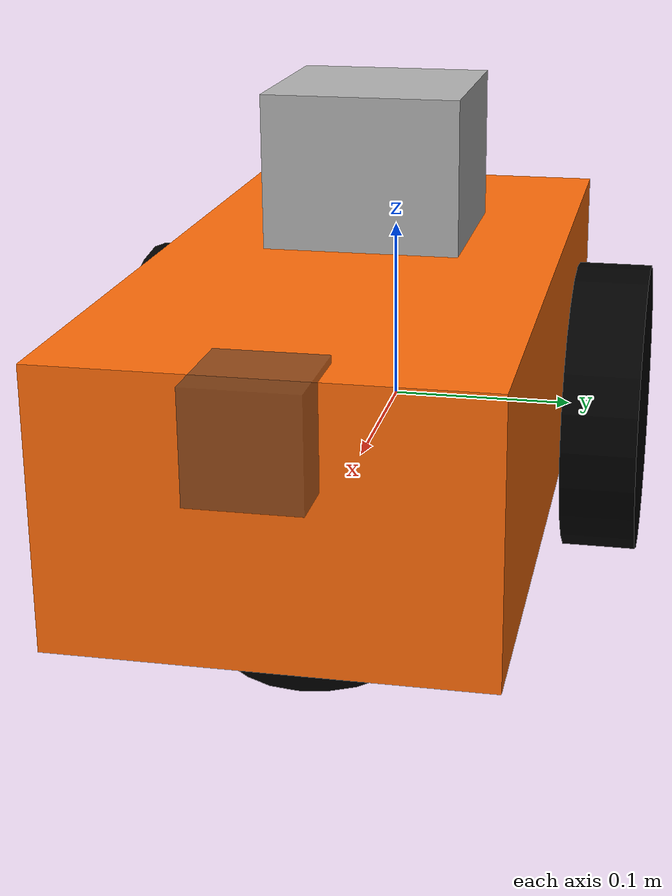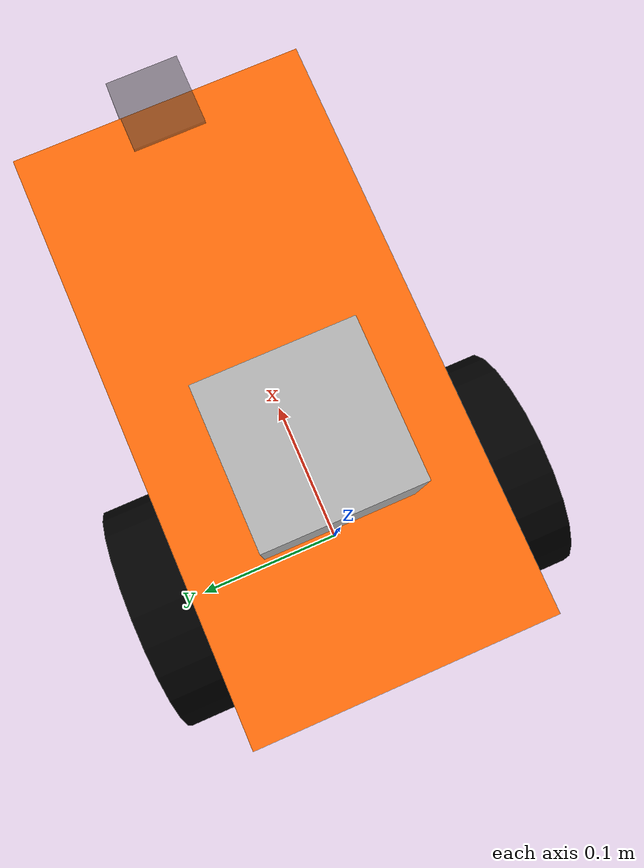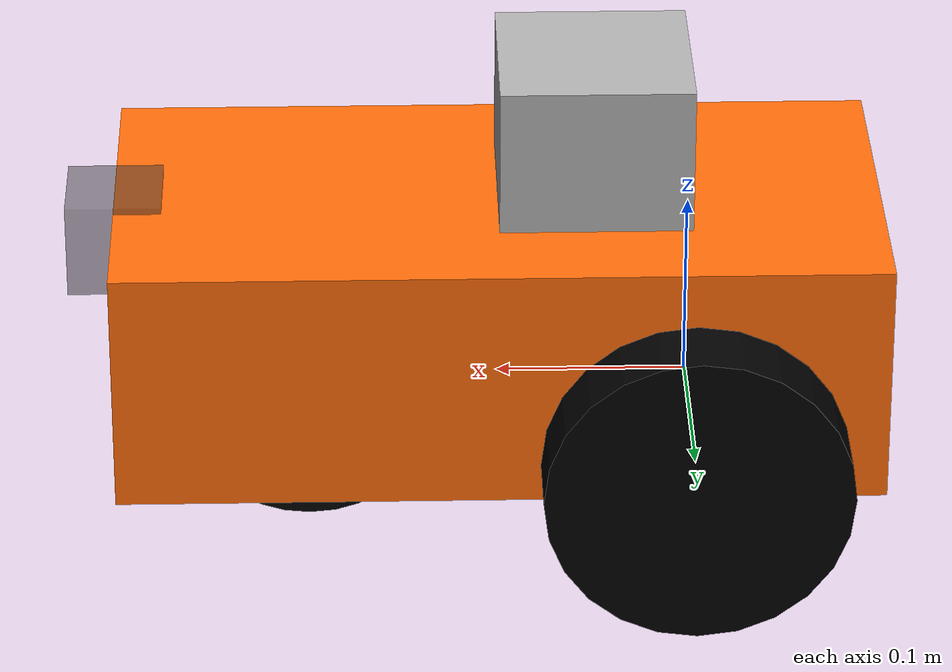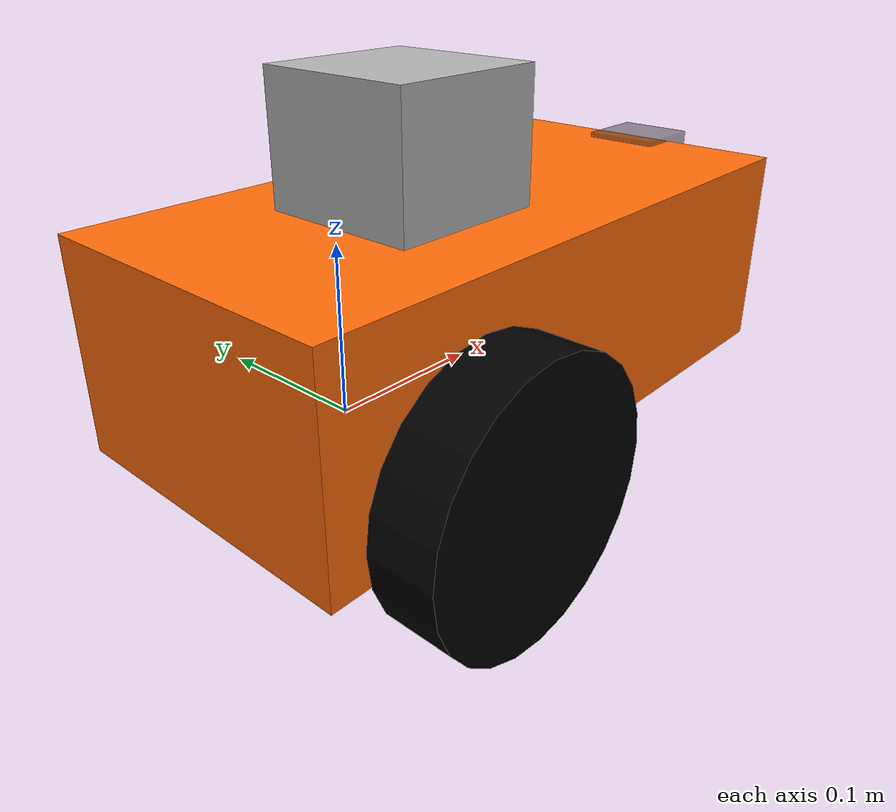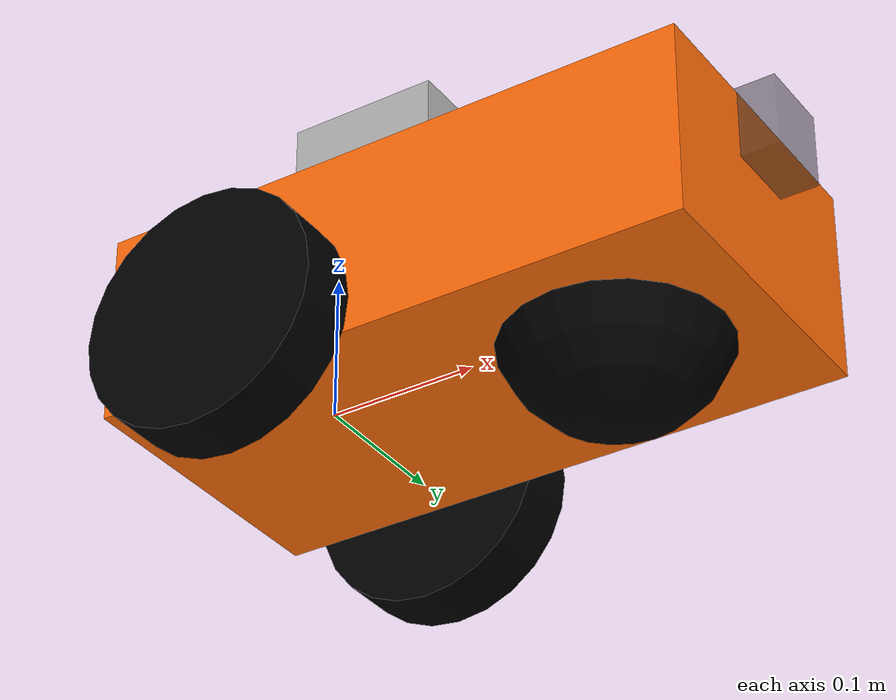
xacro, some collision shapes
<?xml version='1.0'?>

<robot name="simple_chassis_bot" xmlns:xacro="http://www.ros.org/wiki/xacro">

  <!-- import Rviz color definitions -->
  <xacro:include filename="$(find simple_chassis_bot)/urdf/materials.xacro" />
  <!-- import inertial macros for calculating mass etc. of shapes -->
  <xacro:include filename="$(find simple_chassis_bot)/urdf/inertial_macros.xacro" />
  <!--  gazebo plugins -->
  <xacro:include filename="$(find simple_chassis_bot)/urdf/simple_chassis_bot.gazebo" />

  <xacro:property name="wheel_radius" value="0.08" />
  <xacro:property name="chassis_length" value="0.4" />
  <xacro:property name="chassis_width" value="0.2" />
  <xacro:property name="chassis_height" value="0.13" />

  <!-- base link -->
  <!-- for a differential drive robot easiest if this is centre of wheel axle, this is also the centre of rotation for the robot -->
  <link name="base_link"></link>

  <!-- chassis -->
  <!-- origin just behind the centre of the base_link -->
  <joint name="chassis_joint" type="fixed">
    <parent link="base_link" />
    <child link="chassis" />
    <origin xyz="-0.1 0 0" />
  </joint>

  <link name="chassis">
    <visual>
      <origin xyz="${chassis_length/2} 0 ${chassis_height/3}" />
      <geometry>
        <box size="${chassis_length} ${chassis_width} ${chassis_height}" />
      </geometry>
      <material name="orange" />
    </visual>
    <collision>
      <origin xyz="${chassis_length/2} 0 ${chassis_height/3}" />
      <geometry>
        <box size="${chassis_length} ${chassis_width} ${chassis_height}" />
      </geometry>
    </collision>
    <xacro:inertial_box mass="2" x="${chassis_length}" y="${chassis_width}" z="${chassis_height}">
      <origin xyz="${chassis_length/2} 0 ${chassis_height/3}" rpy="0 0 0" />
    </xacro:inertial_box>
  </link>

  <gazebo reference="chassis">
    <material>
      Gazebo/Orange
  </material>
  </gazebo>

  <!-- left wheel -->

  <joint name="left_wheel_joint" type="continuous">
    <parent link="base_link" />
    <child link="left_wheel" />
    <origin xyz="0 0.122 0" rpy="-${pi/2} 0 0" />
    <axis xyz="0 0 1" />
  </joint>

  <link name="left_wheel">
    <visual>
      <geometry>
        <cylinder length="0.04" radius="${wheel_radius}" />
      </geometry>
      <material name="black" />
    </visual>
    <collision>
      <geometry>
        <cylinder length="0.04" radius="${wheel_radius}" />
      </geometry>
    </collision>
    <xacro:inertial_cylinder mass="0.1" length="0.04" radius="${wheel_radius}">
      <origin xyz="0 0 0" rpy="0 0 0" />
    </xacro:inertial_cylinder>
  </link>

  <gazebo reference="left_wheel">
    <material>
      Gazebo/Black
  </material>
  </gazebo>

  <!-- right wheel -->

  <joint name="right_wheel_joint" type="continuous">
    <parent link="base_link" />
    <child link="right_wheel" />
    <origin xyz="0 -0.122 0" rpy="${pi/2} 0 0" />
    <axis xyz="0 0 -1" />
  </joint>

  <link name="right_wheel">
    <visual>
      <geometry>
        <cylinder length="0.04" radius="${wheel_radius}" />
      </geometry>
      <material name="black" />
    </visual>
    <collision>
      <geometry>
        <cylinder length="0.04" radius="${wheel_radius}" />
      </geometry>
    </collision>
    <xacro:inertial_cylinder mass="0.1" length="0.04" radius="${wheel_radius}">
      <origin xyz="0 0 0" rpy="0 0 0" />
    </xacro:inertial_cylinder>
  </link>

  <gazebo reference="right_wheel">
    <material>
      Gazebo/Black
  </material>
  </gazebo>

  <!-- caster_wheel -->

  <joint name="caster_wheel_joint" type="fixed">
    <parent link="chassis" />
    <child link="caster_wheel" />
    <origin xyz="0.3 0 0" rpy="0 0 0" />
  </joint>

  <link name="caster_wheel">
    <visual>
      <geometry>
        <sphere radius="0.075" />
      </geometry>
      <material name="black" />
    </visual>
    <collision>
      <geometry>
        <sphere radius="0.075" />
      </geometry>
    </collision>
    <xacro:inertial_sphere mass="0.1" radius="${wheel_radius}">
      <origin xyz="0 0 0" rpy="0 0 0" />
    </xacro:inertial_sphere>
  </link>

  <gazebo reference="caster_wheel">
    <material>
      Gazebo/Black
  </material>
    <!-- reduce friction instead of making it continuous in all directions -->
    <mu1 value="0.001" />
    <mu2 value="0.001" />
  </gazebo>

  <!-- sensors -->
  <!-- camera  -->
  <joint name="camera_joint" type="fixed">
    <origin xyz="0.4 0 ${chassis_height*2/3}" rpy="0 0 0" />
    <parent link="chassis" />
    <child link="camera_link" />
    <axis xyz="0.0 1.0 0.0" />
  </joint>

  <link name="camera_link">
    <visual name="camera_visual">
      <origin xyz="0.0 0.0 0.0" rpy="0.0 0.0 0.0" />
      <geometry>
        <box size="0.05 0.05 0.05" />
      </geometry>
      <material name="grey"/>
    </visual>
    <collision>
      <origin xyz="0.0 0.0 0.0" rpy="0.0 0.0 0.0" />
      <geometry>
        <box size="0.05 0.05 0.05" />
      </geometry>
    </collision>
    <xacro:inertial_box mass="0.1" x="0.05" y="0.05" z="0.05">
      <origin xyz="0 0 0" rpy="0 0 0" />
    </xacro:inertial_box>
  </link>

  <gazebo reference="camera_link">
    <material>
      Gazebo/Gray
    </material>
  </gazebo>

  <!-- RGB-D camera for project_four : map my world-->
  <joint name="camera_optical_joint" type="fixed">
    <origin xyz="0 0 0" rpy="-1.5707 0 -1.5707" />
    <parent link="camera_link"/>
    <child link="camera_link_optical"/>
  </joint>

  <link name="camera_link_optical">
  </link>

  <!-- lidar sensor - hokuyo -->
  <joint name="hokuyo_joint" type="fixed">
    <origin xyz="0.15 0.0 ${chassis_height*2/3+0.05}" rpy="0.0 0.0 0.0" />
    <parent link="chassis" />
    <child link="hokuyo" />
    <axis xyz="0.0 1 0.0" />
  </joint>

  <link name="hokuyo">
    <inertial>
      <origin xyz="0.0 0.0 0.0" rpy="0.0 0.0 0.0" />
      <mass value="1e-5" />
      <inertia ixx="1e-6" ixy="0" ixz="0" iyy="1e-6" iyz="0" izz="1e-6" />
    </inertial>
    <visual name="hokuyo_visual">
      <origin xyz="0.0 0.0 0.0" rpy="0.0 0.0 0.0" />
      <geometry>
        <mesh filename="package://simple_chassis_bot/meshes/hokuyo.dae" />
      </geometry>
    </visual>
    <collision>
      <origin xyz="0.0 0.0 0.0" rpy="0.0 0.0 0.0" />
      <geometry>
        <box size="0.1 0.1 0.1" />
      </geometry>
    </collision>
  </link>

</robot>

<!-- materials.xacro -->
<robot>

  <material name="black">
    <color rgba="0.0 0.0 0.0 1.0"/>
  </material>

  <material name="blue">
    <color rgba="0.0 0.0 0.8 1.0"/>
  </material>

  <material name="green">
    <color rgba="0.0 0.8 0.0 1.0"/>
  </material>

  <material name="grey">
    <color rgba="0.2 0.2 0.2 0.5"/>
  </material>

  <material name="orange">
    <color rgba="${255/255} ${108/255} ${10/255} 1.0"/>
  </material>

  <material name="brown">
    <color rgba="${222/255} ${207/255} ${195/255} 1.0"/>
  </material>

  <material name="red">
    <color rgba="0.8 0.0 0.0 1.0"/>
  </material>

  <material name="white">
    <color rgba="1.0 1.0 1.0 1.0"/>
  </material>

</robot>
